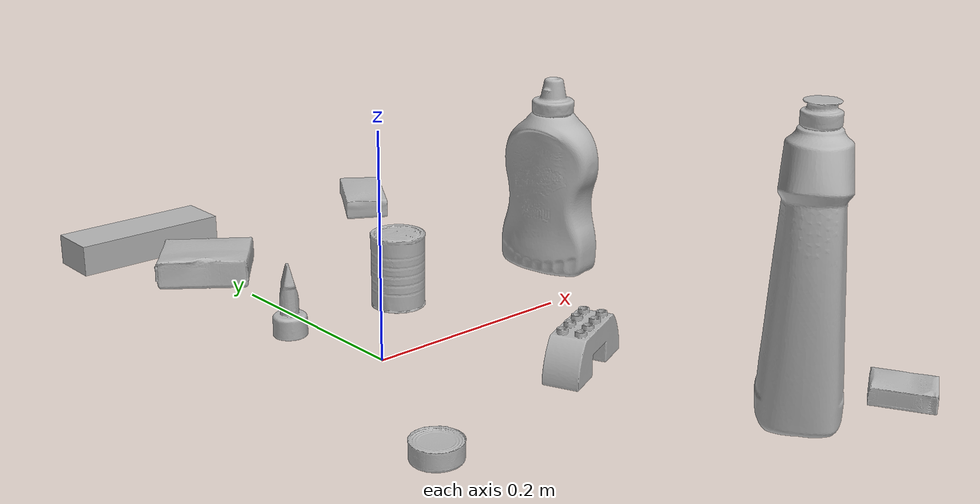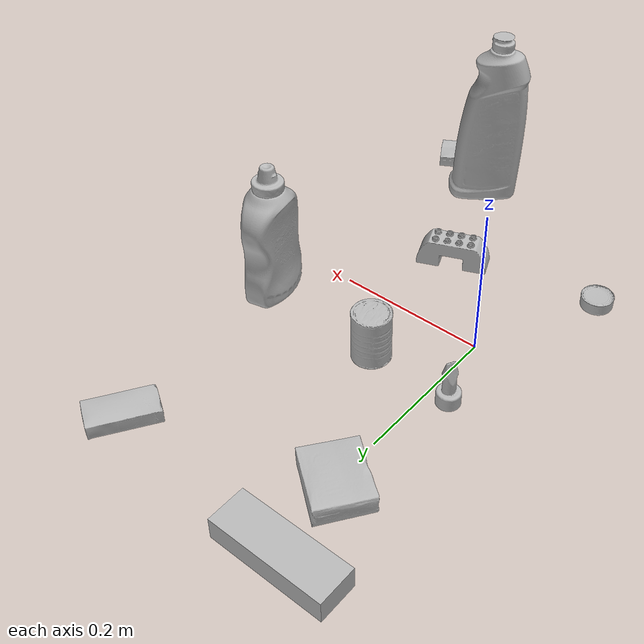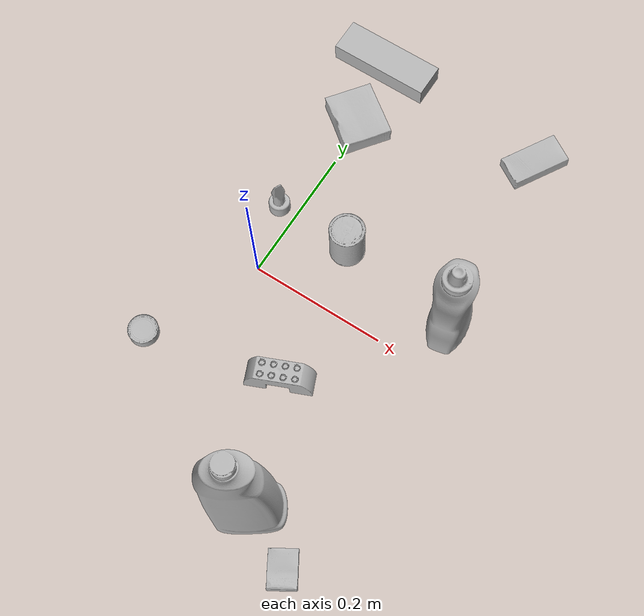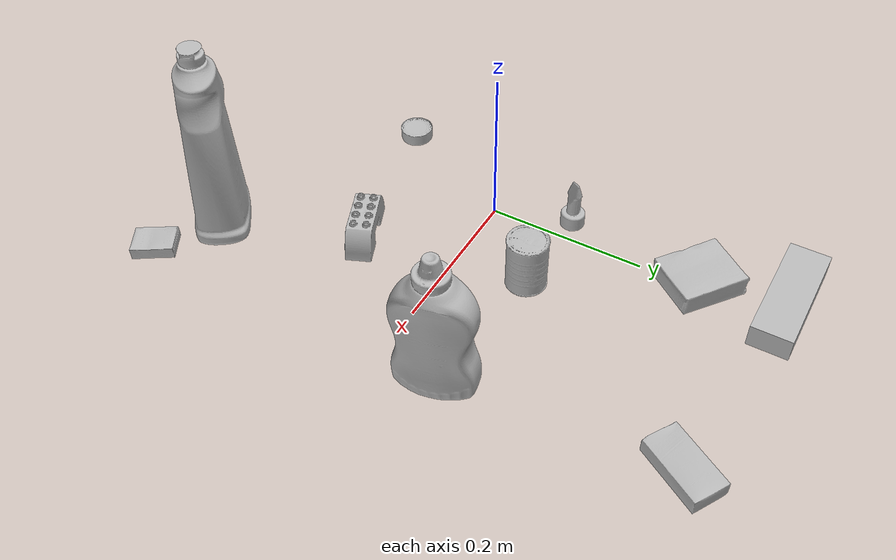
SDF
<sdf version="1.4">
  <world name="default">
    <light name="light1" type="point">
      <pose>0 0 1 0 0 0</pose>
      <diffuse>3 3 3 1</diffuse>
      <specular>3 3 3 1</specular>
    </light>
    <light name="light2" type="point">
      <pose>0 0.5 2 0 0 0</pose>
      <diffuse>1 1 1 1</diffuse>
      <specular>1 1 1 1</specular>
    </light>
    <light name="light3" type="point">
      <pose>0 0.5 2 0 0 0</pose>
      <diffuse>3 3 3 1</diffuse>
      <specular>3 3 3 1</specular>
    </light>
    <scene>
      <ambient>0.7 0.7 0.7</ambient>
    </scene>
    <model name="bottle1">
      <link name="link_bottle1">
        <collision name="default">
          <geometry>
            <mesh>
              <uri>model://mustard_bottle/collision_meshes/collision.obj</uri>
              <scale>1.0 1.0 1.0</scale>
            </mesh>
          </geometry>
          <surface>
            <friction>
              <ode>
                <mu>0.5</mu>
                <mu2>0.5</mu2>
              </ode>
            </friction>
          <contact>
        <ode>
            <max_vel>0</max_vel>
            <min_depth>0.0001</min_depth>
            <kp>1e8</kp>
        </ode>
    </contact></surface>
        </collision>
        <visual name="default">
          <geometry>
            <mesh>
              <uri>model://mustard_bottle/visual_meshes/visual.dae</uri>
              <scale>1.0 1.0 1.0</scale>
            </mesh>
          </geometry>
        </visual>
        <inertial>
          <mass>0.8303800225257874</mass>
          <pose>0.0005032453336752951 -0.00015647402324248105 -0.017475798726081848 0.0004182333015560062 0.0009465791044325989 0.02485372608929167</pose>
          <inertia>
            <ixx>0.0023058522</ixx>
            <iyy>0.0020231898</iyy>
            <izz>0.00060770847</izz>
            <ixy>0</ixy>
            <ixz>0</ixz>
            <iyz>0</iyz>
          </inertia>
        </inertial>
      </link>
      <pose>0.26971715688705444 0.07324858754873276 0.09583087265491486 -0.01205073148933066 -0.004889608605032206 -2.9515624351485488</pose>
    </model>
    <model name="bottle2">
      <link name="link_bottle2">
        <collision name="default">
          <geometry>
            <mesh>
              <uri>model://bleach_cleanser/collision_meshes/collision.obj</uri>
              <scale>1.0 1.0 1.0</scale>
            </mesh>
          </geometry>
          <surface>
            <friction>
              <ode>
                <mu>0.5</mu>
                <mu2>0.5</mu2>
              </ode>
            </friction>
          <contact>
        <ode>
            <max_vel>0</max_vel>
            <min_depth>0.0001</min_depth>
            <kp>1e8</kp>
        </ode>
    </contact></surface>
        </collision>
        <visual name="default">
          <geometry>
            <mesh>
              <uri>model://bleach_cleanser/visual_meshes/visual.dae</uri>
              <scale>1.0 1.0 1.0</scale>
            </mesh>
          </geometry>
        </visual>
        <inertial>
          <mass>1.2443958520889282</mass>
          <pose>0.00012193184375064448 0.0037838828284293413 -0.02442161552608013 -0.07381670616387152 0.00042011519151103325 -0.006875073427896589</pose>
          <inertia>
            <ixx>0.006056655</ixx>
            <iyy>0.005643917</iyy>
            <izz>0.0010355307</izz>
            <ixy>0</ixy>
            <ixz>0</ixz>
            <iyz>0</iyz>
          </inertia>
        </inertial>
      </link>
      <pose>0.1811479777097702 -0.2893887460231781 0.12613694369792938 -0.005108257463227007 0.007512276171081068 2.209162722603931</pose>
    </model>
    <model name="toy1">
      <link name="link_toy1">
        <collision name="default">
          <geometry>
            <mesh>
              <uri>model://e_lego_duplo/collision_meshes/collision.obj</uri>
              <scale>1.0 1.0 1.0</scale>
            </mesh>
          </geometry>
          <surface>
            <friction>
              <ode>
                <mu>0.5</mu>
                <mu2>0.5</mu2>
              </ode>
            </friction>
          <contact>
        <ode>
            <max_vel>0</max_vel>
            <min_depth>0.0001</min_depth>
            <kp>1e8</kp>
        </ode>
    </contact></surface>
        </collision>
        <visual name="default">
          <geometry>
            <mesh>
              <uri>model://e_lego_duplo/visual_meshes/visual.dae</uri>
              <scale>1.0 1.0 1.0</scale>
            </mesh>
          </geometry>
        </visual>
        <inertial>
          <mass>0.09737597405910492</mass>
          <pose>0.00032560466206632555 0.00023485408746637404 0.00195214559789747 -0.022567666099209266 -6.826041083389806e-05 -0.0076251575404409295</pose>
          <inertia>
            <ixx>2.0306108e-05</ixx>
            <iyy>8.3341496e-05</iyy>
            <izz>8.115786e-05</izz>
            <ixy>0</ixy>
            <ixz>0</ixz>
            <iyz>0</iyz>
          </inertia>
        </inertial>
      </link>
      <pose>0.1175059825181961 -0.11963610351085663 0.02180899679660797 9.589218727528287e-07 3.750418422543041e-07 0.4041539385667065</pose>
    </model>
    <model name="toy2">
      <link name="link_toy2">
        <collision name="default">
          <geometry>
            <mesh>
              <uri>model://e_toy_airplane/collision_meshes/collision.obj</uri>
              <scale>1.0 1.0 1.0</scale>
            </mesh>
          </geometry>
          <surface>
            <friction>
              <ode>
                <mu>0.5</mu>
                <mu2>0.5</mu2>
              </ode>
            </friction>
          <contact>
        <ode>
            <max_vel>0</max_vel>
            <min_depth>0.0001</min_depth>
            <kp>1e8</kp>
        </ode>
    </contact></surface>
        </collision>
        <visual name="default">
          <geometry>
            <mesh>
              <uri>model://e_toy_airplane/visual_meshes/visual.dae</uri>
              <scale>1.0 1.0 1.0</scale>
            </mesh>
          </geometry>
        </visual>
        <inertial>
          <mass>0.02463557943701744</mass>
          <pose>0.0001174048229586333 -2.2482929125544615e-05 -0.011187203228473663 0.005518471763615081 0.009228316378097946 0.15041226495803456</pose>
          <inertia>
            <ixx>7.519061e-06</ixx>
            <iyy>7.442144e-06</iyy>
            <izz>2.2597733e-06</izz>
            <ixy>0</ixy>
            <ixz>0</ixz>
            <iyz>0</iyz>
          </inertia>
        </inertial>
      </link>
      <pose>-0.027573978528380394 0.09613915532827377 0.03321198374032974 4.345531140903894e-05 -0.0001399253419899904 2.543173048519919</pose>
    </model>
    <model name="can1">
      <link name="link_can1">
        <collision name="default">
          <geometry>
            <mesh>
              <uri>model://master_chef_can/collision_meshes/collision.obj</uri>
              <scale>0.5 0.5 0.5</scale>
            </mesh>
          </geometry>
          <surface>
            <friction>
              <ode>
                <mu>0.5</mu>
                <mu2>0.5</mu2>
              </ode>
            </friction>
          <contact>
        <ode>
            <max_vel>0</max_vel>
            <min_depth>0.0001</min_depth>
            <kp>1e8</kp>
        </ode>
    </contact></surface>
        </collision>
        <visual name="default">
          <geometry>
            <mesh>
              <uri>model://master_chef_can/visual_meshes/visual.dae</uri>
              <scale>0.5 0.5 0.5</scale>
            </mesh>
          </geometry>
        </visual>
        <inertial>
          <mass>0.10604178160429001</mass>
          <pose>-4.6619643399026245e-05 1.3926852204804163e-07 -5.079910988570191e-05 -0.0017995162277820833 0.0006479167566960504 -0.6102671332965355</pose>
          <inertia>
            <ixx>6.2239335e-05</ixx>
            <iyy>6.178125e-05</iyy>
            <izz>3.439199e-05</izz>
            <ixy>0</ixy>
            <ixz>0</ixz>
            <iyz>0</iyz>
          </inertia>
        </inertial>
      </link>
      <pose>0.0906221941113472 0.09155159443616867 0.03530198708176613 -1.3037757642189808e-06 -1.0717040447475365e-06 -0.8681835657067455</pose>
    </model>
    <model name="can2">
      <link name="link_can2">
        <collision name="default">
          <geometry>
            <mesh>
              <uri>model://tuna_fish_can/collision_meshes/collision.obj</uri>
              <scale>0.5 0.5 0.5</scale>
            </mesh>
          </geometry>
          <surface>
            <friction>
              <ode>
                <mu>0.5</mu>
                <mu2>0.5</mu2>
              </ode>
            </friction>
          <contact>
        <ode>
            <max_vel>0</max_vel>
            <min_depth>0.0001</min_depth>
            <kp>1e8</kp>
        </ode>
    </contact></surface>
        </collision>
        <visual name="default">
          <geometry>
            <mesh>
              <uri>model://tuna_fish_can/visual_meshes/visual.dae</uri>
              <scale>0.5 0.5 0.5</scale>
            </mesh>
          </geometry>
        </visual>
        <inertial>
          <mass>0.028372401371598244</mass>
          <pose>-2.0361669157864526e-05 -7.256527169374749e-06 -0.0005269024986773729 -0.0017944775646394609 0.00017161727950706725 0.2405381123423382</pose>
          <inertia>
            <ixx>3.8359926e-06</ixx>
            <iyy>3.8200033e-06</iyy>
            <izz>6.5639315e-06</izz>
            <ixy>0</ixy>
            <ixz>0</ixz>
            <iyz>0</iyz>
          </inertia>
        </inertial>
      </link>
      <pose>-0.07841234654188156 -0.16421779990196228 0.008520000614225864 -4.2204744777326395e-08 1.9075745119967572e-08 -0.8854654704795129</pose>
    </model>
    <model name="box1">
      <link name="link_box1">
        <collision name="default">
          <geometry>
            <mesh>
              <uri>model://jenga/collision_meshes/collision.obj</uri>
              <scale>1.0 1.0 1.0</scale>
            </mesh>
          </geometry>
          <surface>
            <friction>
              <ode>
                <mu>0.5</mu>
                <mu2>0.5</mu2>
              </ode>
            </friction>
          <contact>
        <ode>
            <max_vel>0</max_vel>
            <min_depth>0.0001</min_depth>
            <kp>1e8</kp>
        </ode>
    </contact></surface>
        </collision>
        <visual name="default">
          <geometry>
            <mesh>
              <uri>model://jenga/visual_meshes/visual.dae</uri>
              <scale>1.0 1.0 1.0</scale>
            </mesh>
          </geometry>
        </visual>
        <inertial>
          <mass>0.19909408688545227</mass>
          <pose>-2.502855807051674e-07 -0.0001025000965455547 -4.0923401684267446e-05 0.0 -7.34215461761844e-07 0.0</pose>
          <inertia>
            <ixx>5.509416e-05</ixx>
            <iyy>0.00037331658</iyy>
            <izz>0.00039854718</izz>
            <ixy>0</ixy>
            <ixz>0</ixz>
            <iyz>0</iyz>
          </inertia>
        </inertial>
      </link>
      <pose>-0.021659983322024345 0.37540197372436523 0.014999995008111 8.784548196872778e-09 -1.3864509667783163e-09 -3.8391640373602655e-06</pose>
    </model>
    <model name="box2">
      <link name="link_box2">
        <collision name="default">
          <geometry>
            <mesh>
              <uri>model://cracker_box/collision_meshes/collision.obj</uri>
              <scale>0.25 0.25 0.25</scale>
            </mesh>
          </geometry>
          <surface>
            <friction>
              <ode>
                <mu>0.5</mu>
                <mu2>0.5</mu2>
              </ode>
            </friction>
          <contact>
        <ode>
            <max_vel>0</max_vel>
            <min_depth>0.0001</min_depth>
            <kp>1e8</kp>
        </ode>
    </contact></surface>
        </collision>
        <visual name="default">
          <geometry>
            <mesh>
              <uri>model://cracker_box/visual_meshes/visual.dae</uri>
              <scale>0.25 0.25 0.25</scale>
            </mesh>
          </geometry>
        </visual>
        <inertial>
          <mass>0.04114612191915512</mass>
          <pose>0.00023660354781895876 6.358561950037256e-05 -0.0004257383698131889 -0.00031620780631524763 -0.011106488668660274 0.002546795934166242</pose>
          <inertia>
            <ixx>6.5410845e-06</ixx>
            <iyy>1.0800616e-05</iyy>
            <izz>1.5413472e-05</izz>
            <ixy>0</ixy>
            <ixz>0</ixz>
            <iyz>0</iyz>
          </inertia>
        </inertial>
      </link>
      <pose>0.2635645866394043 -0.33092811703681946 0.009120450355112553 -0.011788043137154142 -0.007367171583168642 2.1065639037181105</pose>
    </model>
    <model name="box3">
      <link name="link_box3">
        <collision name="default">
          <geometry>
            <mesh>
              <uri>model://gelatin_box/collision_meshes/collision.obj</uri>
              <scale>1.0 1.0 1.0</scale>
            </mesh>
          </geometry>
          <surface>
            <friction>
              <ode>
                <mu>0.5</mu>
                <mu2>0.5</mu2>
              </ode>
            </friction>
          <contact>
        <ode>
            <max_vel>0</max_vel>
            <min_depth>0.0001</min_depth>
            <kp>1e8</kp>
        </ode>
    </contact></surface>
        </collision>
        <visual name="default">
          <geometry>
            <mesh>
              <uri>model://gelatin_box/visual_meshes/visual.dae</uri>
              <scale>1.0 1.0 1.0</scale>
            </mesh>
          </geometry>
        </visual>
        <inertial>
          <mass>0.2244011014699936</mass>
          <pose>0.00043196187471039593 0.00011156871914863586 -0.00036403213744051754 -0.001050372105108351 -0.004755819619724262 0.01644056133527167</pose>
          <inertia>
            <ixx>0.00015840889</ixx>
            <iyy>0.000113150636</iyy>
            <izz>0.0002411336</izz>
            <ixy>0</ixy>
            <ixz>0</ixz>
            <iyz>0</iyz>
          </inertia>
        </inertial>
      </link>
      <pose>-0.007005666382610798 0.27222874760627747 0.01516831573098898 0.005596607256621655 -0.007303585264183431 -2.22392651238447</pose>
    </model>
    <model name="box4">
      <link name="link_box4">
        <collision name="default">
          <geometry>
            <mesh>
              <uri>model://sugar_box/collision_meshes/collision.obj</uri>
              <scale>0.5 0.5 0.5</scale>
            </mesh>
          </geometry>
          <surface>
            <friction>
              <ode>
                <mu>0.5</mu>
                <mu2>0.5</mu2>
              </ode>
            </friction>
          <contact>
        <ode>
            <max_vel>0</max_vel>
            <min_depth>0.0001</min_depth>
            <kp>1e8</kp>
        </ode>
    </contact></surface>
        </collision>
        <visual name="default">
          <geometry>
            <mesh>
              <uri>model://sugar_box/visual_meshes/visual.dae</uri>
              <scale>0.5 0.5 0.5</scale>
            </mesh>
          </geometry>
        </visual>
        <inertial>
          <mass>0.11117161065340042</mass>
          <pose>0.0005171863595023751 1.9245546354795806e-05 -0.00018182402709499002 -0.0004046265622990317 0.001050663638873437 0.002615378555930204</pose>
          <inertia>
            <ixx>2.3156968e-05</ixx>
            <iyy>7.4848074e-05</iyy>
            <izz>8.960209e-05</izz>
            <ixy>0</ixy>
            <ixz>0</ixz>
            <iyz>0</iyz>
          </inertia>
        </inertial>
      </link>
      <pose>0.2465953826904297 0.3506987988948822 0.011399301700294018 0.0007753079540098869 -0.023433241190050625 1.0213772913017636</pose>
    </model>
  <physics type="ode">
      <max_contacts>50</max_contacts>
      <ode>
        <solver>
          <type>quick</type>
          <iters>75</iters>
        </solver>
        <constraints>
          <contact_max_correcting_vel>0</contact_max_correcting_vel>
          <contact_surface_layer>0</contact_surface_layer>
        </constraints>
      </ode>
    </physics></world>
</sdf>
